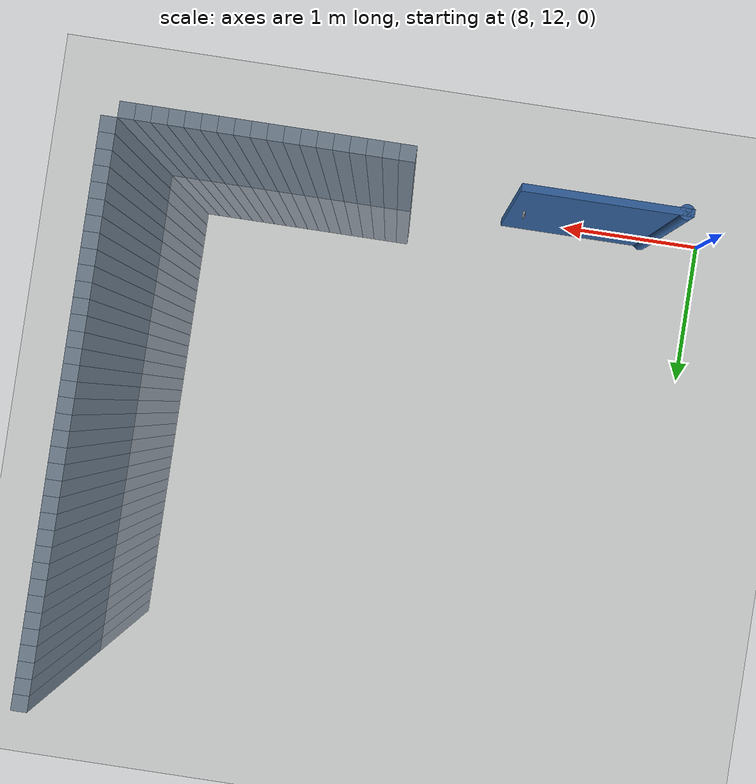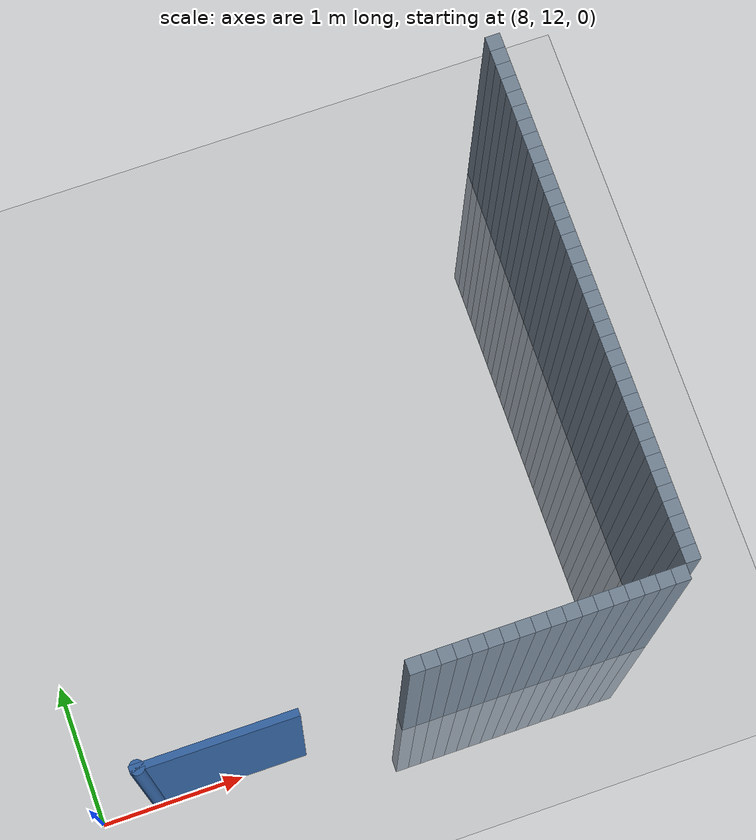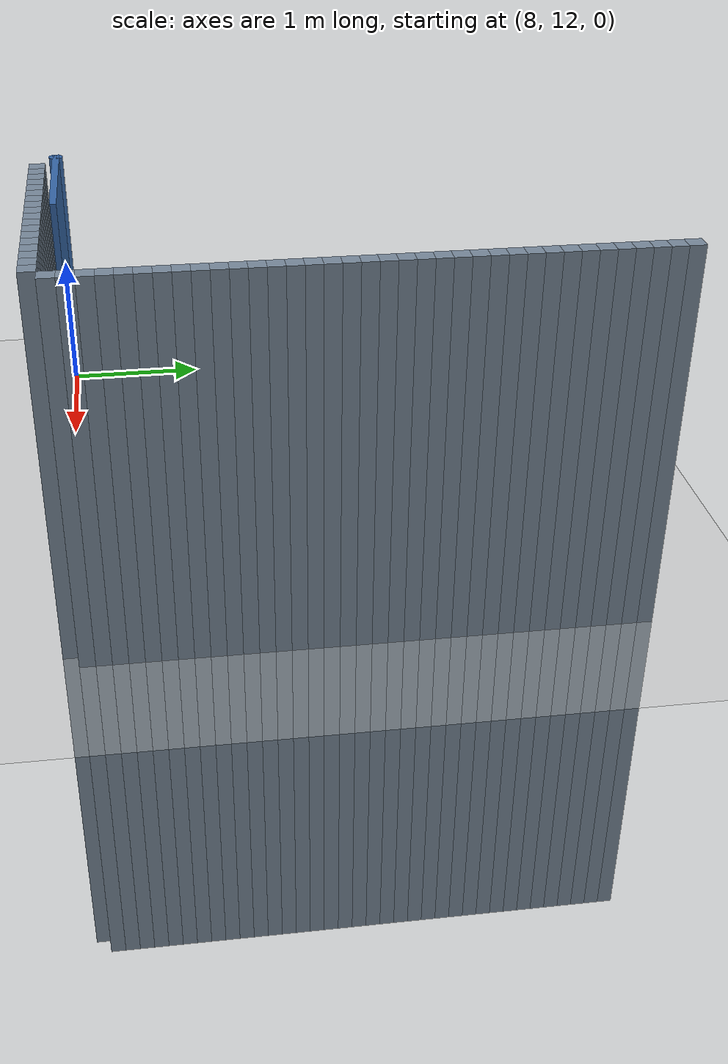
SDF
<sdf version="1.6">
 <world name="default">
  <model name="ground_plane">
   <static>1</static>
   <link name="link">
    <collision name="collision">
     <geometry><plane><normal>0 0 1</normal><size>100 100</size></plane></geometry>
     <surface><friction><ode><mu>100</mu><mu2>50</mu2></ode></friction></surface>
    </collision>
    <visual name="visual">
     <cast_shadows>0</cast_shadows>
     <geometry><plane><normal>0 0 1</normal><size>100 100</size></plane></geometry>
     <material>
      <script><uri>file://media/materials/scripts/gazebo.material</uri><name>Gazebo/Grey</name></script>
     </material>
    </visual>
   </link>
  </model>
  <model name="unit_cylinder_528">
   <static>1</static>
   <pose>10.2 12 0 0 -0 0</pose>
   <link name="link">
    <inertial>
     <mass>1</mass>
     <inertia><ixx>0.145833</ixx><ixy>0</ixy><ixz>0</ixz><iyy>0.145833</iyy><iyz>0</iyz><izz>0.125</izz></inertia>
    </inertial>
    <collision name="collision"><geometry><box><size>0.1 0.1 5</size></box></geometry></collision>
    <visual name="visual">
     <geometry><box><size>0.1 0.1 5</size></box></geometry>
     <material><ambient>0.466667 0.533333 0.6 1</ambient><diffuse>0.466667 0.533333 0.6 1</diffuse></material>
     <material>
      <script><name>Gazebo/Grey</name><uri>file://media/materials/scripts/gazebo.material</uri></script>
     </material>
    </visual>
   </link>
  </model>
  <model name="unit_cylinder_532">
   <static>1</static>
   <pose>10.3 12 0 0 -0 0</pose>
   <link name="link">
    <inertial>
     <mass>1</mass>
     <inertia><ixx>0.145833</ixx><ixy>0</ixy><ixz>0</ixz><iyy>0.145833</iyy><iyz>0</iyz><izz>0.125</izz></inertia>
    </inertial>
    <collision name="collision"><geometry><box><size>0.1 0.1 5</size></box></geometry></collision>
    <visual name="visual">
     <geometry><box><size>0.1 0.1 5</size></box></geometry>
     <material><ambient>0.466667 0.533333 0.6 1</ambient><diffuse>0.466667 0.533333 0.6 1</diffuse></material>
     <material>
      <script><name>Gazebo/Grey</name><uri>file://media/materials/scripts/gazebo.material</uri></script>
     </material>
    </visual>
   </link>
  </model>
  <model name="unit_cylinder_536">
   <static>1</static>
   <pose>10.4 12 0 0 -0 0</pose>
   <link name="link">
    <inertial>
     <mass>1</mass>
     <inertia><ixx>0.145833</ixx><ixy>0</ixy><ixz>0</ixz><iyy>0.145833</iyy><iyz>0</iyz><izz>0.125</izz></inertia>
    </inertial>
    <collision name="collision"><geometry><box><size>0.1 0.1 5</size></box></geometry></collision>
    <visual name="visual">
     <geometry><box><size>0.1 0.1 5</size></box></geometry>
     <material><ambient>0.466667 0.533333 0.6 1</ambient><diffuse>0.466667 0.533333 0.6 1</diffuse></material>
     <material>
      <script><name>Gazebo/Grey</name><uri>file://media/materials/scripts/gazebo.material</uri></script>
     </material>
    </visual>
   </link>
  </model>
  <model name="unit_cylinder_540">
   <static>1</static>
   <pose>10.5 12 0 0 -0 0</pose>
   <link name="link">
    <inertial>
     <mass>1</mass>
     <inertia><ixx>0.145833</ixx><ixy>0</ixy><ixz>0</ixz><iyy>0.145833</iyy><iyz>0</iyz><izz>0.125</izz></inertia>
    </inertial>
    <collision name="collision"><geometry><box><size>0.1 0.1 5</size></box></geometry></collision>
    <visual name="visual">
     <geometry><box><size>0.1 0.1 5</size></box></geometry>
     <material><ambient>0.466667 0.533333 0.6 1</ambient><diffuse>0.466667 0.533333 0.6 1</diffuse></material>
     <material>
      <script><name>Gazebo/Grey</name><uri>file://media/materials/scripts/gazebo.material</uri></script>
     </material>
    </visual>
   </link>
  </model>
  <model name="unit_cylinder_544">
   <static>1</static>
   <pose>10.6 12 0 0 -0 0</pose>
   <link name="link">
    <inertial>
     <mass>1</mass>
     <inertia><ixx>0.145833</ixx><ixy>0</ixy><ixz>0</ixz><iyy>0.145833</iyy><iyz>0</iyz><izz>0.125</izz></inertia>
    </inertial>
    <collision name="collision"><geometry><box><size>0.1 0.1 5</size></box></geometry></collision>
    <visual name="visual">
     <geometry><box><size>0.1 0.1 5</size></box></geometry>
     <material><ambient>0.466667 0.533333 0.6 1</ambient><diffuse>0.466667 0.533333 0.6 1</diffuse></material>
     <material>
      <script><name>Gazebo/Grey</name><uri>file://media/materials/scripts/gazebo.material</uri></script>
     </material>
    </visual>
   </link>
  </model>
  <model name="unit_cylinder_548">
   <static>1</static>
   <pose>10.7 12 0 0 -0 0</pose>
   <link name="link">
    <inertial>
     <mass>1</mass>
     <inertia><ixx>0.145833</ixx><ixy>0</ixy><ixz>0</ixz><iyy>0.145833</iyy><iyz>0</iyz><izz>0.125</izz></inertia>
    </inertial>
    <collision name="collision"><geometry><box><size>0.1 0.1 5</size></box></geometry></collision>
    <visual name="visual">
     <geometry><box><size>0.1 0.1 5</size></box></geometry>
     <material><ambient>0.466667 0.533333 0.6 1</ambient><diffuse>0.466667 0.533333 0.6 1</diffuse></material>
     <material>
      <script><name>Gazebo/Grey</name><uri>file://media/materials/scripts/gazebo.material</uri></script>
     </material>
    </visual>
   </link>
  </model>
  <model name="unit_cylinder_552">
   <static>1</static>
   <pose>10.8 12 0 0 -0 0</pose>
   <link name="link">
    <inertial>
     <mass>1</mass>
     <inertia><ixx>0.145833</ixx><ixy>0</ixy><ixz>0</ixz><iyy>0.145833</iyy><iyz>0</iyz><izz>0.125</izz></inertia>
    </inertial>
    <collision name="collision"><geometry><box><size>0.1 0.1 5</size></box></geometry></collision>
    <visual name="visual">
     <geometry><box><size>0.1 0.1 5</size></box></geometry>
     <material><ambient>0.466667 0.533333 0.6 1</ambient><diffuse>0.466667 0.533333 0.6 1</diffuse></material>
     <material>
      <script><name>Gazebo/Grey</name><uri>file://media/materials/scripts/gazebo.material</uri></script>
     </material>
    </visual>
   </link>
  </model>
  <model name="unit_cylinder_556">
   <static>1</static>
   <pose>10.9 12 0 0 -0 0</pose>
   <link name="link">
    <inertial>
     <mass>1</mass>
     <inertia><ixx>0.145833</ixx><ixy>0</ixy><ixz>0</ixz><iyy>0.145833</iyy><iyz>0</iyz><izz>0.125</izz></inertia>
    </inertial>
    <collision name="collision"><geometry><box><size>0.1 0.1 5</size></box></geometry></collision>
    <visual name="visual">
     <geometry><box><size>0.1 0.1 5</size></box></geometry>
     <material><ambient>0.466667 0.533333 0.6 1</ambient><diffuse>0.466667 0.533333 0.6 1</diffuse></material>
     <material>
      <script><name>Gazebo/Grey</name><uri>file://media/materials/scripts/gazebo.material</uri></script>
     </material>
    </visual>
   </link>
  </model>
  <model name="unit_cylinder_560">
   <static>1</static>
   <pose>11 12 0 0 -0 0</pose>
   <link name="link">
    <inertial>
     <mass>1</mass>
     <inertia><ixx>0.145833</ixx><ixy>0</ixy><ixz>0</ixz><iyy>0.145833</iyy><iyz>0</iyz><izz>0.125</izz></inertia>
    </inertial>
    <collision name="collision"><geometry><box><size>0.1 0.1 5</size></box></geometry></collision>
    <visual name="visual">
     <geometry><box><size>0.1 0.1 5</size></box></geometry>
     <material><ambient>0.466667 0.533333 0.6 1</ambient><diffuse>0.466667 0.533333 0.6 1</diffuse></material>
     <material>
      <script><name>Gazebo/Grey</name><uri>file://media/materials/scripts/gazebo.material</uri></script>
     </material>
    </visual>
   </link>
  </model>
  <model name="unit_cylinder_564">
   <static>1</static>
   <pose>11.1 12 0 0 -0 0</pose>
   <link name="link">
    <inertial>
     <mass>1</mass>
     <inertia><ixx>0.145833</ixx><ixy>0</ixy><ixz>0</ixz><iyy>0.145833</iyy><iyz>0</iyz><izz>0.125</izz></inertia>
    </inertial>
    <collision name="collision"><geometry><box><size>0.1 0.1 5</size></box></geometry></collision>
    <visual name="visual">
     <geometry><box><size>0.1 0.1 5</size></box></geometry>
     <material><ambient>0.466667 0.533333 0.6 1</ambient><diffuse>0.466667 0.533333 0.6 1</diffuse></material>
     <material>
      <script><name>Gazebo/Grey</name><uri>file://media/materials/scripts/gazebo.material</uri></script>
     </material>
    </visual>
   </link>
  </model>
  <model name="unit_cylinder_568">
   <static>1</static>
   <pose>11.2 12 0 0 -0 0</pose>
   <link name="link">
    <inertial>
     <mass>1</mass>
     <inertia><ixx>0.145833</ixx><ixy>0</ixy><ixz>0</ixz><iyy>0.145833</iyy><iyz>0</iyz><izz>0.125</izz></inertia>
    </inertial>
    <collision name="collision"><geometry><box><size>0.1 0.1 5</size></box></geometry></collision>
    <visual name="visual">
     <geometry><box><size>0.1 0.1 5</size></box></geometry>
     <material><ambient>0.466667 0.533333 0.6 1</ambient><diffuse>0.466667 0.533333 0.6 1</diffuse></material>
     <material>
      <script><name>Gazebo/Grey</name><uri>file://media/materials/scripts/gazebo.material</uri></script>
     </material>
    </visual>
   </link>
  </model>
  <model name="unit_cylinder_572">
   <static>1</static>
   <pose>11.3 12 0 0 -0 0</pose>
   <link name="link">
    <inertial>
     <mass>1</mass>
     <inertia><ixx>0.145833</ixx><ixy>0</ixy><ixz>0</ixz><iyy>0.145833</iyy><iyz>0</iyz><izz>0.125</izz></inertia>
    </inertial>
    <collision name="collision"><geometry><box><size>0.1 0.1 5</size></box></geometry></collision>
    <visual name="visual">
     <geometry><box><size>0.1 0.1 5</size></box></geometry>
     <material><ambient>0.466667 0.533333 0.6 1</ambient><diffuse>0.466667 0.533333 0.6 1</diffuse></material>
     <material>
      <script><name>Gazebo/Grey</name><uri>file://media/materials/scripts/gazebo.material</uri></script>
     </material>
    </visual>
   </link>
  </model>
  <model name="unit_cylinder_576">
   <static>1</static>
   <pose>11.4 12 0 0 -0 0</pose>
   <link name="link">
    <inertial>
     <mass>1</mass>
     <inertia><ixx>0.145833</ixx><ixy>0</ixy><ixz>0</ixz><iyy>0.145833</iyy><iyz>0</iyz><izz>0.125</izz></inertia>
    </inertial>
    <collision name="collision"><geometry><box><size>0.1 0.1 5</size></box></geometry></collision>
    <visual name="visual">
     <geometry><box><size>0.1 0.1 5</size></box></geometry>
     <material><ambient>0.466667 0.533333 0.6 1</ambient><diffuse>0.466667 0.533333 0.6 1</diffuse></material>
     <material>
      <script><name>Gazebo/Grey</name><uri>file://media/materials/scripts/gazebo.material</uri></script>
     </material>
    </visual>
   </link>
  </model>
  <model name="unit_cylinder_580">
   <static>1</static>
   <pose>11.5 12 0 0 -0 0</pose>
   <link name="link">
    <inertial>
     <mass>1</mass>
     <inertia><ixx>0.145833</ixx><ixy>0</ixy><ixz>0</ixz><iyy>0.145833</iyy><iyz>0</iyz><izz>0.125</izz></inertia>
    </inertial>
    <collision name="collision"><geometry><box><size>0.1 0.1 5</size></box></geometry></collision>
    <visual name="visual">
     <geometry><box><size>0.1 0.1 5</size></box></geometry>
     <material><ambient>0.466667 0.533333 0.6 1</ambient><diffuse>0.466667 0.533333 0.6 1</diffuse></material>
     <material>
      <script><name>Gazebo/Grey</name><uri>file://media/materials/scripts/gazebo.material</uri></script>
     </material>
    </visual>
   </link>
  </model>
  <model name="unit_cylinder_584">
   <static>1</static>
   <pose>11.6 12 0 0 -0 0</pose>
   <link name="link">
    <inertial>
     <mass>1</mass>
     <inertia><ixx>0.145833</ixx><ixy>0</ixy><ixz>0</ixz><iyy>0.145833</iyy><iyz>0</iyz><izz>0.125</izz></inertia>
    </inertial>
    <collision name="collision"><geometry><box><size>0.1 0.1 5</size></box></geometry></collision>
    <visual name="visual">
     <geometry><box><size>0.1 0.1 5</size></box></geometry>
     <material><ambient>0.466667 0.533333 0.6 1</ambient><diffuse>0.466667 0.533333 0.6 1</diffuse></material>
     <material>
      <script><name>Gazebo/Grey</name><uri>file://media/materials/scripts/gazebo.material</uri></script>
     </material>
    </visual>
   </link>
  </model>
  <model name="unit_cylinder_588">
   <static>1</static>
   <pose>11.7 12 0 0 -0 0</pose>
   <link name="link">
    <inertial>
     <mass>1</mass>
     <inertia><ixx>0.145833</ixx><ixy>0</ixy><ixz>0</ixz><iyy>0.145833</iyy><iyz>0</iyz><izz>0.125</izz></inertia>
    </inertial>
    <collision name="collision"><geometry><box><size>0.1 0.1 5</size></box></geometry></collision>
    <visual name="visual">
     <geometry><box><size>0.1 0.1 5</size></box></geometry>
     <material><ambient>0.466667 0.533333 0.6 1</ambient><diffuse>0.466667 0.533333 0.6 1</diffuse></material>
     <material>
      <script><name>Gazebo/Grey</name><uri>file://media/materials/scripts/gazebo.material</uri></script>
     </material>
    </visual>
   </link>
  </model>
  <model name="unit_cylinder_592">
   <static>1</static>
   <pose>11.8 12 0 0 -0 0</pose>
   <link name="link">
    <inertial>
     <mass>1</mass>
     <inertia><ixx>0.145833</ixx><ixy>0</ixy><ixz>0</ixz><iyy>0.145833</iyy><iyz>0</iyz><izz>0.125</izz></inertia>
    </inertial>
    <collision name="collision"><geometry><box><size>0.1 0.1 5</size></box></geometry></collision>
    <visual name="visual">
     <geometry><box><size>0.1 0.1 5</size></box></geometry>
     <material><ambient>0.466667 0.533333 0.6 1</ambient><diffuse>0.466667 0.533333 0.6 1</diffuse></material>
     <material>
      <script><name>Gazebo/Grey</name><uri>file://media/materials/scripts/gazebo.material</uri></script>
     </material>
    </visual>
   </link>
  </model>
  <model name="unit_cylinder_596">
   <static>1</static>
   <pose>11.9 12 0 0 -0 0</pose>
   <link name="link">
    <inertial>
     <mass>1</mass>
     <inertia><ixx>0.145833</ixx><ixy>0</ixy><ixz>0</ixz><iyy>0.145833</iyy><iyz>0</iyz><izz>0.125</izz></inertia>
    </inertial>
    <collision name="collision"><geometry><box><size>0.1 0.1 5</size></box></geometry></collision>
    <visual name="visual">
     <geometry><box><size>0.1 0.1 5</size></box></geometry>
     <material><ambient>0.466667 0.533333 0.6 1</ambient><diffuse>0.466667 0.533333 0.6 1</diffuse></material>
     <material>
      <script><name>Gazebo/Grey</name><uri>file://media/materials/scripts/gazebo.material</uri></script>
     </material>
    </visual>
   </link>
  </model>
  <model name="unit_cylinder_719">
   <static>1</static>
   <pose>12 12.1 0 0 -0 0</pose>
   <link name="link">
    <inertial>
     <mass>1</mass>
     <inertia><ixx>0.145833</ixx><ixy>0</ixy><ixz>0</ixz><iyy>0.145833</iyy><iyz>0</iyz><izz>0.125</izz></inertia>
    </inertial>
    <collision name="collision"><geometry><box><size>0.1 0.1 5</size></box></geometry></collision>
    <visual name="visual">
     <geometry><box><size>0.1 0.1 5</size></box></geometry>
     <material><ambient>0.466667 0.533333 0.6 1</ambient><diffuse>0.466667 0.533333 0.6 1</diffuse></material>
     <material>
      <script><name>Gazebo/Grey</name><uri>file://media/materials/scripts/gazebo.material</uri></script>
     </material>
    </visual>
   </link>
  </model>
  <model name="unit_cylinder_720">
   <static>1</static>
   <pose>12 12.2 0 0 -0 0</pose>
   <link name="link">
    <inertial>
     <mass>1</mass>
     <inertia><ixx>0.145833</ixx><ixy>0</ixy><ixz>0</ixz><iyy>0.145833</iyy><iyz>0</iyz><izz>0.125</izz></inertia>
    </inertial>
    <collision name="collision"><geometry><box><size>0.1 0.1 5</size></box></geometry></collision>
    <visual name="visual">
     <geometry><box><size>0.1 0.1 5</size></box></geometry>
     <material><ambient>0.466667 0.533333 0.6 1</ambient><diffuse>0.466667 0.533333 0.6 1</diffuse></material>
     <material>
      <script><name>Gazebo/Grey</name><uri>file://media/materials/scripts/gazebo.material</uri></script>
     </material>
    </visual>
   </link>
  </model>
  <model name="unit_cylinder_721">
   <static>1</static>
   <pose>12 12.3 0 0 -0 0</pose>
   <link name="link">
    <inertial>
     <mass>1</mass>
     <inertia><ixx>0.145833</ixx><ixy>0</ixy><ixz>0</ixz><iyy>0.145833</iyy><iyz>0</iyz><izz>0.125</izz></inertia>
    </inertial>
    <collision name="collision"><geometry><box><size>0.1 0.1 5</size></box></geometry></collision>
    <visual name="visual">
     <geometry><box><size>0.1 0.1 5</size></box></geometry>
     <material><ambient>0.466667 0.533333 0.6 1</ambient><diffuse>0.466667 0.533333 0.6 1</diffuse></material>
     <material>
      <script><name>Gazebo/Grey</name><uri>file://media/materials/scripts/gazebo.material</uri></script>
     </material>
    </visual>
   </link>
  </model>
  <model name="unit_cylinder_722">
   <static>1</static>
   <pose>12 12.4 0 0 -0 0</pose>
   <link name="link">
    <inertial>
     <mass>1</mass>
     <inertia><ixx>0.145833</ixx><ixy>0</ixy><ixz>0</ixz><iyy>0.145833</iyy><iyz>0</iyz><izz>0.125</izz></inertia>
    </inertial>
    <collision name="collision"><geometry><box><size>0.1 0.1 5</size></box></geometry></collision>
    <visual name="visual">
     <geometry><box><size>0.1 0.1 5</size></box></geometry>
     <material><ambient>0.466667 0.533333 0.6 1</ambient><diffuse>0.466667 0.533333 0.6 1</diffuse></material>
     <material>
      <script><name>Gazebo/Grey</name><uri>file://media/materials/scripts/gazebo.material</uri></script>
     </material>
    </visual>
   </link>
  </model>
  <model name="unit_cylinder_723">
   <static>1</static>
   <pose>12 12.5 0 0 -0 0</pose>
   <link name="link">
    <inertial>
     <mass>1</mass>
     <inertia><ixx>0.145833</ixx><ixy>0</ixy><ixz>0</ixz><iyy>0.145833</iyy><iyz>0</iyz><izz>0.125</izz></inertia>
    </inertial>
    <collision name="collision"><geometry><box><size>0.1 0.1 5</size></box></geometry></collision>
    <visual name="visual">
     <geometry><box><size>0.1 0.1 5</size></box></geometry>
     <material><ambient>0.466667 0.533333 0.6 1</ambient><diffuse>0.466667 0.533333 0.6 1</diffuse></material>
     <material>
      <script><name>Gazebo/Grey</name><uri>file://media/materials/scripts/gazebo.material</uri></script>
     </material>
    </visual>
   </link>
  </model>
  <model name="unit_cylinder_724">
   <static>1</static>
   <pose>12 12.6 0 0 -0 0</pose>
   <link name="link">
    <inertial>
     <mass>1</mass>
     <inertia><ixx>0.145833</ixx><ixy>0</ixy><ixz>0</ixz><iyy>0.145833</iyy><iyz>0</iyz><izz>0.125</izz></inertia>
    </inertial>
    <collision name="collision"><geometry><box><size>0.1 0.1 5</size></box></geometry></collision>
    <visual name="visual">
     <geometry><box><size>0.1 0.1 5</size></box></geometry>
     <material><ambient>0.466667 0.533333 0.6 1</ambient><diffuse>0.466667 0.533333 0.6 1</diffuse></material>
     <material>
      <script><name>Gazebo/Grey</name><uri>file://media/materials/scripts/gazebo.material</uri></script>
     </material>
    </visual>
   </link>
  </model>
  <model name="unit_cylinder_725">
   <static>1</static>
   <pose>12 12.7 0 0 -0 0</pose>
   <link name="link">
    <inertial>
     <mass>1</mass>
     <inertia><ixx>0.145833</ixx><ixy>0</ixy><ixz>0</ixz><iyy>0.145833</iyy><iyz>0</iyz><izz>0.125</izz></inertia>
    </inertial>
    <collision name="collision"><geometry><box><size>0.1 0.1 5</size></box></geometry></collision>
    <visual name="visual">
     <geometry><box><size>0.1 0.1 5</size></box></geometry>
     <material><ambient>0.466667 0.533333 0.6 1</ambient><diffuse>0.466667 0.533333 0.6 1</diffuse></material>
     <material>
      <script><name>Gazebo/Grey</name><uri>file://media/materials/scripts/gazebo.material</uri></script>
     </material>
    </visual>
   </link>
  </model>
  <model name="unit_cylinder_726">
   <static>1</static>
   <pose>12 12.8 0 0 -0 0</pose>
   <link name="link">
    <inertial>
     <mass>1</mass>
     <inertia><ixx>0.145833</ixx><ixy>0</ixy><ixz>0</ixz><iyy>0.145833</iyy><iyz>0</iyz><izz>0.125</izz></inertia>
    </inertial>
    <collision name="collision"><geometry><box><size>0.1 0.1 5</size></box></geometry></collision>
    <visual name="visual">
     <geometry><box><size>0.1 0.1 5</size></box></geometry>
     <material><ambient>0.466667 0.533333 0.6 1</ambient><diffuse>0.466667 0.533333 0.6 1</diffuse></material>
     <material>
      <script><name>Gazebo/Grey</name><uri>file://media/materials/scripts/gazebo.material</uri></script>
     </material>
    </visual>
   </link>
  </model>
  <model name="unit_cylinder_727">
   <static>1</static>
   <pose>12 12.9 0 0 -0 0</pose>
   <link name="link">
    <inertial>
     <mass>1</mass>
     <inertia><ixx>0.145833</ixx><ixy>0</ixy><ixz>0</ixz><iyy>0.145833</iyy><iyz>0</iyz><izz>0.125</izz></inertia>
    </inertial>
    <collision name="collision"><geometry><box><size>0.1 0.1 5</size></box></geometry></collision>
    <visual name="visual">
     <geometry><box><size>0.1 0.1 5</size></box></geometry>
     <material><ambient>0.466667 0.533333 0.6 1</ambient><diffuse>0.466667 0.533333 0.6 1</diffuse></material>
     <material>
      <script><name>Gazebo/Grey</name><uri>file://media/materials/scripts/gazebo.material</uri></script>
     </material>
    </visual>
   </link>
  </model>
  <model name="unit_cylinder_728">
   <static>1</static>
   <pose>12 13 0 0 -0 0</pose>
   <link name="link">
    <inertial>
     <mass>1</mass>
     <inertia><ixx>0.145833</ixx><ixy>0</ixy><ixz>0</ixz><iyy>0.145833</iyy><iyz>0</iyz><izz>0.125</izz></inertia>
    </inertial>
    <collision name="collision"><geometry><box><size>0.1 0.1 5</size></box></geometry></collision>
    <visual name="visual">
     <geometry><box><size>0.1 0.1 5</size></box></geometry>
     <material><ambient>0.466667 0.533333 0.6 1</ambient><diffuse>0.466667 0.533333 0.6 1</diffuse></material>
     <material>
      <script><name>Gazebo/Grey</name><uri>file://media/materials/scripts/gazebo.material</uri></script>
     </material>
    </visual>
   </link>
  </model>
  <model name="unit_cylinder_729">
   <static>1</static>
   <pose>12 13.1 0 0 -0 0</pose>
   <link name="link">
    <inertial>
     <mass>1</mass>
     <inertia><ixx>0.145833</ixx><ixy>0</ixy><ixz>0</ixz><iyy>0.145833</iyy><iyz>0</iyz><izz>0.125</izz></inertia>
    </inertial>
    <collision name="collision"><geometry><box><size>0.1 0.1 5</size></box></geometry></collision>
    <visual name="visual">
     <geometry><box><size>0.1 0.1 5</size></box></geometry>
     <material><ambient>0.466667 0.533333 0.6 1</ambient><diffuse>0.466667 0.533333 0.6 1</diffuse></material>
     <material>
      <script><name>Gazebo/Grey</name><uri>file://media/materials/scripts/gazebo.material</uri></script>
     </material>
    </visual>
   </link>
  </model>
  <model name="unit_cylinder_730">
   <static>1</static>
   <pose>12 13.2 0 0 -0 0</pose>
   <link name="link">
    <inertial>
     <mass>1</mass>
     <inertia><ixx>0.145833</ixx><ixy>0</ixy><ixz>0</ixz><iyy>0.145833</iyy><iyz>0</iyz><izz>0.125</izz></inertia>
    </inertial>
    <collision name="collision"><geometry><box><size>0.1 0.1 5</size></box></geometry></collision>
    <visual name="visual">
     <geometry><box><size>0.1 0.1 5</size></box></geometry>
     <material><ambient>0.466667 0.533333 0.6 1</ambient><diffuse>0.466667 0.533333 0.6 1</diffuse></material>
     <material>
      <script><name>Gazebo/Grey</name><uri>file://media/materials/scripts/gazebo.material</uri></script>
     </material>
    </visual>
   </link>
  </model>
  <model name="unit_cylinder_731">
   <static>1</static>
   <pose>12 13.3 0 0 -0 0</pose>
   <link name="link">
    <inertial>
     <mass>1</mass>
     <inertia><ixx>0.145833</ixx><ixy>0</ixy><ixz>0</ixz><iyy>0.145833</iyy><iyz>0</iyz><izz>0.125</izz></inertia>
    </inertial>
    <collision name="collision"><geometry><box><size>0.1 0.1 5</size></box></geometry></collision>
    <visual name="visual">
     <geometry><box><size>0.1 0.1 5</size></box></geometry>
     <material><ambient>0.466667 0.533333 0.6 1</ambient><diffuse>0.466667 0.533333 0.6 1</diffuse></material>
     <material>
      <script><name>Gazebo/Grey</name><uri>file://media/materials/scripts/gazebo.material</uri></script>
     </material>
    </visual>
   </link>
  </model>
  <model name="unit_cylinder_732">
   <static>1</static>
   <pose>12 13.4 0 0 -0 0</pose>
   <link name="link">
    <inertial>
     <mass>1</mass>
     <inertia><ixx>0.145833</ixx><ixy>0</ixy><ixz>0</ixz><iyy>0.145833</iyy><iyz>0</iyz><izz>0.125</izz></inertia>
    </inertial>
    <collision name="collision"><geometry><box><size>0.1 0.1 5</size></box></geometry></collision>
    <visual name="visual">
     <geometry><box><size>0.1 0.1 5</size></box></geometry>
     <material><ambient>0.466667 0.533333 0.6 1</ambient><diffuse>0.466667 0.533333 0.6 1</diffuse></material>
     <material>
      <script><name>Gazebo/Grey</name><uri>file://media/materials/scripts/gazebo.material</uri></script>
     </material>
    </visual>
   </link>
  </model>
  <model name="unit_cylinder_733">
   <static>1</static>
   <pose>12 13.5 0 0 -0 0</pose>
   <link name="link">
    <inertial>
     <mass>1</mass>
     <inertia><ixx>0.145833</ixx><ixy>0</ixy><ixz>0</ixz><iyy>0.145833</iyy><iyz>0</iyz><izz>0.125</izz></inertia>
    </inertial>
    <collision name="collision"><geometry><box><size>0.1 0.1 5</size></box></geometry></collision>
    <visual name="visual">
     <geometry><box><size>0.1 0.1 5</size></box></geometry>
     <material><ambient>0.466667 0.533333 0.6 1</ambient><diffuse>0.466667 0.533333 0.6 1</diffuse></material>
     <material>
      <script><name>Gazebo/Grey</name><uri>file://media/materials/scripts/gazebo.material</uri></script>
     </material>
    </visual>
   </link>
  </model>
  <model name="unit_cylinder_734">
   <static>1</static>
   <pose>12 13.6 0 0 -0 0</pose>
   <link name="link">
    <inertial>
     <mass>1</mass>
     <inertia><ixx>0.145833</ixx><ixy>0</ixy><ixz>0</ixz><iyy>0.145833</iyy><iyz>0</iyz><izz>0.125</izz></inertia>
    </inertial>
    <collision name="collision"><geometry><box><size>0.1 0.1 5</size></box></geometry></collision>
    <visual name="visual">
     <geometry><box><size>0.1 0.1 5</size></box></geometry>
     <material><ambient>0.466667 0.533333 0.6 1</ambient><diffuse>0.466667 0.533333 0.6 1</diffuse></material>
     <material>
      <script><name>Gazebo/Grey</name><uri>file://media/materials/scripts/gazebo.material</uri></script>
     </material>
    </visual>
   </link>
  </model>
  <model name="unit_cylinder_735">
   <static>1</static>
   <pose>12 13.7 0 0 -0 0</pose>
   <link name="link">
    <inertial>
     <mass>1</mass>
     <inertia><ixx>0.145833</ixx><ixy>0</ixy><ixz>0</ixz><iyy>0.145833</iyy><iyz>0</iyz><izz>0.125</izz></inertia>
    </inertial>
    <collision name="collision"><geometry><box><size>0.1 0.1 5</size></box></geometry></collision>
    <visual name="visual">
     <geometry><box><size>0.1 0.1 5</size></box></geometry>
     <material><ambient>0.466667 0.533333 0.6 1</ambient><diffuse>0.466667 0.533333 0.6 1</diffuse></material>
     <material>
      <script><name>Gazebo/Grey</name><uri>file://media/materials/scripts/gazebo.material</uri></script>
     </material>
    </visual>
   </link>
  </model>
  <model name="unit_cylinder_736">
   <static>1</static>
   <pose>12 13.8 0 0 -0 0</pose>
   <link name="link">
    <inertial>
     <mass>1</mass>
     <inertia><ixx>0.145833</ixx><ixy>0</ixy><ixz>0</ixz><iyy>0.145833</iyy><iyz>0</iyz><izz>0.125</izz></inertia>
    </inertial>
    <collision name="collision"><geometry><box><size>0.1 0.1 5</size></box></geometry></collision>
    <visual name="visual">
     <geometry><box><size>0.1 0.1 5</size></box></geometry>
     <material><ambient>0.466667 0.533333 0.6 1</ambient><diffuse>0.466667 0.533333 0.6 1</diffuse></material>
     <material>
      <script><name>Gazebo/Grey</name><uri>file://media/materials/scripts/gazebo.material</uri></script>
     </material>
    </visual>
   </link>
  </model>
  <model name="unit_cylinder_737">
   <static>1</static>
   <pose>12 13.9 0 0 -0 0</pose>
   <link name="link">
    <inertial>
     <mass>1</mass>
     <inertia><ixx>0.145833</ixx><ixy>0</ixy><ixz>0</ixz><iyy>0.145833</iyy><iyz>0</iyz><izz>0.125</izz></inertia>
    </inertial>
    <collision name="collision"><geometry><box><size>0.1 0.1 5</size></box></geometry></collision>
    <visual name="visual">
     <geometry><box><size>0.1 0.1 5</size></box></geometry>
     <material><ambient>0.466667 0.533333 0.6 1</ambient><diffuse>0.466667 0.533333 0.6 1</diffuse></material>
     <material>
      <script><name>Gazebo/Grey</name><uri>file://media/materials/scripts/gazebo.material</uri></script>
     </material>
    </visual>
   </link>
  </model>
  <model name="unit_cylinder_738">
   <static>1</static>
   <pose>12 14 0 0 -0 0</pose>
   <link name="link">
    <inertial>
     <mass>1</mass>
     <inertia><ixx>0.145833</ixx><ixy>0</ixy><ixz>0</ixz><iyy>0.145833</iyy><iyz>0</iyz><izz>0.125</izz></inertia>
    </inertial>
    <collision name="collision"><geometry><box><size>0.1 0.1 5</size></box></geometry></collision>
    <visual name="visual">
     <geometry><box><size>0.1 0.1 5</size></box></geometry>
     <material><ambient>0.466667 0.533333 0.6 1</ambient><diffuse>0.466667 0.533333 0.6 1</diffuse></material>
     <material>
      <script><name>Gazebo/Grey</name><uri>file://media/materials/scripts/gazebo.material</uri></script>
     </material>
    </visual>
   </link>
  </model>
  <model name="unit_cylinder_739">
   <static>1</static>
   <pose>12 14.1 0 0 -0 0</pose>
   <link name="link">
    <inertial>
     <mass>1</mass>
     <inertia><ixx>0.145833</ixx><ixy>0</ixy><ixz>0</ixz><iyy>0.145833</iyy><iyz>0</iyz><izz>0.125</izz></inertia>
    </inertial>
    <collision name="collision"><geometry><box><size>0.1 0.1 5</size></box></geometry></collision>
    <visual name="visual">
     <geometry><box><size>0.1 0.1 5</size></box></geometry>
     <material><ambient>0.466667 0.533333 0.6 1</ambient><diffuse>0.466667 0.533333 0.6 1</diffuse></material>
     <material>
      <script><name>Gazebo/Grey</name><uri>file://media/materials/scripts/gazebo.material</uri></script>
     </material>
    </visual>
   </link>
  </model>
  <model name="unit_cylinder_740">
   <static>1</static>
   <pose>12 14.2 0 0 -0 0</pose>
   <link name="link">
    <inertial>
     <mass>1</mass>
     <inertia><ixx>0.145833</ixx><ixy>0</ixy><ixz>0</ixz><iyy>0.145833</iyy><iyz>0</iyz><izz>0.125</izz></inertia>
    </inertial>
    <collision name="collision"><geometry><box><size>0.1 0.1 5</size></box></geometry></collision>
    <visual name="visual">
     <geometry><box><size>0.1 0.1 5</size></box></geometry>
     <material><ambient>0.466667 0.533333 0.6 1</ambient><diffuse>0.466667 0.533333 0.6 1</diffuse></material>
     <material>
      <script><name>Gazebo/Grey</name><uri>file://media/materials/scripts/gazebo.material</uri></script>
     </material>
    </visual>
   </link>
  </model>
  <model name="unit_cylinder_741">
   <static>1</static>
   <pose>12 14.3 0 0 -0 0</pose>
   <link name="link">
    <inertial>
     <mass>1</mass>
     <inertia><ixx>0.145833</ixx><ixy>0</ixy><ixz>0</ixz><iyy>0.145833</iyy><iyz>0</iyz><izz>0.125</izz></inertia>
    </inertial>
    <collision name="collision"><geometry><box><size>0.1 0.1 5</size></box></geometry></collision>
    <visual name="visual">
     <geometry><box><size>0.1 0.1 5</size></box></geometry>
     <material><ambient>0.466667 0.533333 0.6 1</ambient><diffuse>0.466667 0.533333 0.6 1</diffuse></material>
     <material>
      <script><name>Gazebo/Grey</name><uri>file://media/materials/scripts/gazebo.material</uri></script>
     </material>
    </visual>
   </link>
  </model>
  <model name="unit_cylinder_742">
   <static>1</static>
   <pose>12 14.4 0 0 -0 0</pose>
   <link name="link">
    <inertial>
     <mass>1</mass>
     <inertia><ixx>0.145833</ixx><ixy>0</ixy><ixz>0</ixz><iyy>0.145833</iyy><iyz>0</iyz><izz>0.125</izz></inertia>
    </inertial>
    <collision name="collision"><geometry><box><size>0.1 0.1 5</size></box></geometry></collision>
    <visual name="visual">
     <geometry><box><size>0.1 0.1 5</size></box></geometry>
     <material><ambient>0.466667 0.533333 0.6 1</ambient><diffuse>0.466667 0.533333 0.6 1</diffuse></material>
     <material>
      <script><name>Gazebo/Grey</name><uri>file://media/materials/scripts/gazebo.material</uri></script>
     </material>
    </visual>
   </link>
  </model>
  <model name="unit_cylinder_743">
   <static>1</static>
   <pose>12 14.5 0 0 -0 0</pose>
   <link name="link">
    <inertial>
     <mass>1</mass>
     <inertia><ixx>0.145833</ixx><ixy>0</ixy><ixz>0</ixz><iyy>0.145833</iyy><iyz>0</iyz><izz>0.125</izz></inertia>
    </inertial>
    <collision name="collision"><geometry><box><size>0.1 0.1 5</size></box></geometry></collision>
    <visual name="visual">
     <geometry><box><size>0.1 0.1 5</size></box></geometry>
     <material><ambient>0.466667 0.533333 0.6 1</ambient><diffuse>0.466667 0.533333 0.6 1</diffuse></material>
     <material>
      <script><name>Gazebo/Grey</name><uri>file://media/materials/scripts/gazebo.material</uri></script>
     </material>
    </visual>
   </link>
  </model>
  <model name="unit_cylinder_744">
   <static>1</static>
   <pose>12 14.6 0 0 -0 0</pose>
   <link name="link">
    <inertial>
     <mass>1</mass>
     <inertia><ixx>0.145833</ixx><ixy>0</ixy><ixz>0</ixz><iyy>0.145833</iyy><iyz>0</iyz><izz>0.125</izz></inertia>
    </inertial>
    <collision name="collision"><geometry><box><size>0.1 0.1 5</size></box></geometry></collision>
    <visual name="visual">
     <geometry><box><size>0.1 0.1 5</size></box></geometry>
     <material><ambient>0.466667 0.533333 0.6 1</ambient><diffuse>0.466667 0.533333 0.6 1</diffuse></material>
     <material>
      <script><name>Gazebo/Grey</name><uri>file://media/materials/scripts/gazebo.material</uri></script>
     </material>
    </visual>
   </link>
  </model>
  <model name="unit_cylinder_745">
   <static>1</static>
   <pose>12 14.7 0 0 -0 0</pose>
   <link name="link">
    <inertial>
     <mass>1</mass>
     <inertia><ixx>0.145833</ixx><ixy>0</ixy><ixz>0</ixz><iyy>0.145833</iyy><iyz>0</iyz><izz>0.125</izz></inertia>
    </inertial>
    <collision name="collision"><geometry><box><size>0.1 0.1 5</size></box></geometry></collision>
    <visual name="visual">
     <geometry><box><size>0.1 0.1 5</size></box></geometry>
     <material><ambient>0.466667 0.533333 0.6 1</ambient><diffuse>0.466667 0.533333 0.6 1</diffuse></material>
     <material>
      <script><name>Gazebo/Grey</name><uri>file://media/materials/scripts/gazebo.material</uri></script>
     </material>
    </visual>
   </link>
  </model>
  <model name="unit_cylinder_746">
   <static>1</static>
   <pose>12 14.8 0 0 -0 0</pose>
   <link name="link">
    <inertial>
     <mass>1</mass>
     <inertia><ixx>0.145833</ixx><ixy>0</ixy><ixz>0</ixz><iyy>0.145833</iyy><iyz>0</iyz><izz>0.125</izz></inertia>
    </inertial>
    <collision name="collision"><geometry><box><size>0.1 0.1 5</size></box></geometry></collision>
    <visual name="visual">
     <geometry><box><size>0.1 0.1 5</size></box></geometry>
     <material><ambient>0.466667 0.533333 0.6 1</ambient><diffuse>0.466667 0.533333 0.6 1</diffuse></material>
     <material>
      <script><name>Gazebo/Grey</name><uri>file://media/materials/scripts/gazebo.material</uri></script>
     </material>
    </visual>
   </link>
  </model>
  <model name="unit_cylinder_747">
   <static>1</static>
   <pose>12 14.9 0 0 -0 0</pose>
   <link name="link">
    <inertial>
     <mass>1</mass>
     <inertia><ixx>0.145833</ixx><ixy>0</ixy><ixz>0</ixz><iyy>0.145833</iyy><iyz>0</iyz><izz>0.125</izz></inertia>
    </inertial>
    <collision name="collision"><geometry><box><size>0.1 0.1 5</size></box></geometry></collision>
    <visual name="visual">
     <geometry><box><size>0.1 0.1 5</size></box></geometry>
     <material><ambient>0.466667 0.533333 0.6 1</ambient><diffuse>0.466667 0.533333 0.6 1</diffuse></material>
     <material>
      <script><name>Gazebo/Grey</name><uri>file://media/materials/scripts/gazebo.material</uri></script>
     </material>
    </visual>
   </link>
  </model>
  <model name="unit_cylinder_748">
   <static>1</static>
   <pose>12 15 0 0 -0 0</pose>
   <link name="link">
    <inertial>
     <mass>1</mass>
     <inertia><ixx>0.145833</ixx><ixy>0</ixy><ixz>0</ixz><iyy>0.145833</iyy><iyz>0</iyz><izz>0.125</izz></inertia>
    </inertial>
    <collision name="collision"><geometry><box><size>0.1 0.1 5</size></box></geometry></collision>
    <visual name="visual">
     <geometry><box><size>0.1 0.1 5</size></box></geometry>
     <material><ambient>0.466667 0.533333 0.6 1</ambient><diffuse>0.466667 0.533333 0.6 1</diffuse></material>
     <material>
      <script><name>Gazebo/Grey</name><uri>file://media/materials/scripts/gazebo.material</uri></script>
     </material>
    </visual>
   </link>
  </model>
  <model name="unit_cylinder_749">
   <static>1</static>
   <pose>12 15.1 0 0 -0 0</pose>
   <link name="link">
    <inertial>
     <mass>1</mass>
     <inertia><ixx>0.145833</ixx><ixy>0</ixy><ixz>0</ixz><iyy>0.145833</iyy><iyz>0</iyz><izz>0.125</izz></inertia>
    </inertial>
    <collision name="collision"><geometry><box><size>0.1 0.1 5</size></box></geometry></collision>
    <visual name="visual">
     <geometry><box><size>0.1 0.1 5</size></box></geometry>
     <material><ambient>0.466667 0.533333 0.6 1</ambient><diffuse>0.466667 0.533333 0.6 1</diffuse></material>
     <material>
      <script><name>Gazebo/Grey</name><uri>file://media/materials/scripts/gazebo.material</uri></script>
     </material>
    </visual>
   </link>
  </model>
  <model name="unit_cylinder_750">
   <static>1</static>
   <pose>12 15.2 0 0 -0 0</pose>
   <link name="link">
    <inertial>
     <mass>1</mass>
     <inertia><ixx>0.145833</ixx><ixy>0</ixy><ixz>0</ixz><iyy>0.145833</iyy><iyz>0</iyz><izz>0.125</izz></inertia>
    </inertial>
    <collision name="collision"><geometry><box><size>0.1 0.1 5</size></box></geometry></collision>
    <visual name="visual">
     <geometry><box><size>0.1 0.1 5</size></box></geometry>
     <material><ambient>0.466667 0.533333 0.6 1</ambient><diffuse>0.466667 0.533333 0.6 1</diffuse></material>
     <material>
      <script><name>Gazebo/Grey</name><uri>file://media/materials/scripts/gazebo.material</uri></script>
     </material>
    </visual>
   </link>
  </model>
  <model name="unit_cylinder_751">
   <static>1</static>
   <pose>12 15.3 0 0 -0 0</pose>
   <link name="link">
    <inertial>
     <mass>1</mass>
     <inertia><ixx>0.145833</ixx><ixy>0</ixy><ixz>0</ixz><iyy>0.145833</iyy><iyz>0</iyz><izz>0.125</izz></inertia>
    </inertial>
    <collision name="collision"><geometry><box><size>0.1 0.1 5</size></box></geometry></collision>
    <visual name="visual">
     <geometry><box><size>0.1 0.1 5</size></box></geometry>
     <material><ambient>0.466667 0.533333 0.6 1</ambient><diffuse>0.466667 0.533333 0.6 1</diffuse></material>
     <material>
      <script><name>Gazebo/Grey</name><uri>file://media/materials/scripts/gazebo.material</uri></script>
     </material>
    </visual>
   </link>
  </model>
  <model name="unit_cylinder_752">
   <static>1</static>
   <pose>12 15.4 0 0 -0 0</pose>
   <link name="link">
    <inertial>
     <mass>1</mass>
     <inertia><ixx>0.145833</ixx><ixy>0</ixy><ixz>0</ixz><iyy>0.145833</iyy><iyz>0</iyz><izz>0.125</izz></inertia>
    </inertial>
    <collision name="collision"><geometry><box><size>0.1 0.1 5</size></box></geometry></collision>
    <visual name="visual">
     <geometry><box><size>0.1 0.1 5</size></box></geometry>
     <material><ambient>0.466667 0.533333 0.6 1</ambient><diffuse>0.466667 0.533333 0.6 1</diffuse></material>
     <material>
      <script><name>Gazebo/Grey</name><uri>file://media/materials/scripts/gazebo.material</uri></script>
     </material>
    </visual>
   </link>
  </model>
  <model name="unit_cylinder_753">
   <static>1</static>
   <pose>12 15.5 0 0 -0 0</pose>
   <link name="link">
    <inertial>
     <mass>1</mass>
     <inertia><ixx>0.145833</ixx><ixy>0</ixy><ixz>0</ixz><iyy>0.145833</iyy><iyz>0</iyz><izz>0.125</izz></inertia>
    </inertial>
    <collision name="collision"><geometry><box><size>0.1 0.1 5</size></box></geometry></collision>
    <visual name="visual">
     <geometry><box><size>0.1 0.1 5</size></box></geometry>
     <material><ambient>0.466667 0.533333 0.6 1</ambient><diffuse>0.466667 0.533333 0.6 1</diffuse></material>
     <material>
      <script><name>Gazebo/Grey</name><uri>file://media/materials/scripts/gazebo.material</uri></script>
     </material>
    </visual>
   </link>
  </model>
  <model name="unit_cylinder_754">
   <static>1</static>
   <pose>12 15.6 0 0 -0 0</pose>
   <link name="link">
    <inertial>
     <mass>1</mass>
     <inertia><ixx>0.145833</ixx><ixy>0</ixy><ixz>0</ixz><iyy>0.145833</iyy><iyz>0</iyz><izz>0.125</izz></inertia>
    </inertial>
    <collision name="collision"><geometry><box><size>0.1 0.1 5</size></box></geometry></collision>
    <visual name="visual">
     <geometry><box><size>0.1 0.1 5</size></box></geometry>
     <material><ambient>0.466667 0.533333 0.6 1</ambient><diffuse>0.466667 0.533333 0.6 1</diffuse></material>
     <material>
      <script><name>Gazebo/Grey</name><uri>file://media/materials/scripts/gazebo.material</uri></script>
     </material>
    </visual>
   </link>
  </model>
  <model name="hinge_door">
   <link name="link_0">
    <inertial>
     <mass>0.11</mass>
     <inertia>
      <ixx>0.0366896</ixx>
      <ixy>0</ixy>
      <ixz>0</ixz>
      <iyy>0.0477583</iyy>
      <iyz>0</iyz>
      <izz>0.0111146</izz>
     </inertia>
    </inertial>
    <pose>0.25 0 1 0 -0 0</pose>
    <visual name="visual">
     <geometry><box><size>1.1 0.05 2</size></box></geometry>
     <material>
      <lighting>1</lighting>
      <script><uri>file://media/materials/scripts/gazebo.material</uri><name>Gazebo/Grey</name></script>
      <shader type="pixel"><normal_map>__default__</normal_map></shader>
      <ambient>0.204 0.396 0.643 1</ambient>
      <diffuse>0.7 0.7 0.7 1</diffuse>
      <specular>0.01 0.01 0.01 1</specular>
      <emissive>0 0 0 1</emissive>
     </material>
    </visual>
    <collision name="collision">
     <geometry><box><size>1.1 0.05 2</size></box></geometry>
     <surface>
      <friction>
       <ode><mu>1</mu><mu2>1</mu2><fdir1>0 0 0</fdir1><slip1>0</slip1><slip2>0</slip2></ode>
       <torsional>
        <coefficient>1</coefficient>
        <patch_radius>0</patch_radius>
        <surface_radius>0</surface_radius>
        <use_patch_radius>1</use_patch_radius>
        <ode><slip>0</slip></ode>
       </torsional>
      </friction>
      <bounce><restitution_coefficient>0</restitution_coefficient><threshold>1e+06</threshold></bounce>
      <contact>
       <collide_without_contact>0</collide_without_contact>
       <collide_without_contact_bitmask>1</collide_without_contact_bitmask>
       <collide_bitmask>1</collide_bitmask>
       <ode>
        <soft_cfm>0</soft_cfm>
        <soft_erp>0.2</soft_erp>
        <kp>1e+13</kp>
        <kd>1</kd>
        <max_vel>0.01</max_vel>
        <min_depth>0</min_depth>
       </ode>
       <bullet>
        <split_impulse>1</split_impulse>
        <split_impulse_penetration_threshold>-0.01</split_impulse_penetration_threshold>
        <soft_cfm>0</soft_cfm>
        <soft_erp>0.2</soft_erp>
        <kp>1e+13</kp>
        <kd>1</kd>
       </bullet>
      </contact>
     </surface>
    </collision>
   </link>
   <link name="link_1">
    <inertial>
     <mass>10.9956</mass>
     <inertia>
      <ixx>3.67206</ixx>
      <ixy>0</ixy>
      <ixz>0</ixz>
      <iyy>3.67206</iyy>
      <iyz>0</iyz>
      <izz>0.0137445</izz>
     </inertia>
    </inertial>
    <pose>-0.25 0 1 0 -0 0</pose>
    <visual name="visual">
     <geometry><cylinder><radius>0.05</radius><length>2</length></cylinder></geometry>
     <material>
      <lighting>1</lighting>
      <script><uri>file://media/materials/scripts/gazebo.material</uri><name>Gazebo/Grey</name></script>
      <shader type="pixel"><normal_map>__default__</normal_map></shader>
      <ambient>0.204 0.396 0.643 1</ambient>
      <diffuse>0.7 0.7 0.7 1</diffuse>
      <specular>0.01 0.01 0.01 1</specular>
      <emissive>0 0 0 1</emissive>
     </material>
    </visual>
    <collision name="collision">
     <geometry><cylinder><radius>0.05</radius><length>2</length></cylinder></geometry>
     <surface>
      <friction>
       <ode><mu>1</mu><mu2>1</mu2><fdir1>0 0 0</fdir1><slip1>0</slip1><slip2>0</slip2></ode>
       <torsional>
        <coefficient>1</coefficient>
        <patch_radius>0</patch_radius>
        <surface_radius>0</surface_radius>
        <use_patch_radius>1</use_patch_radius>
        <ode><slip>0</slip></ode>
       </torsional>
      </friction>
      <bounce><restitution_coefficient>0</restitution_coefficient><threshold>1e+06</threshold></bounce>
      <contact>
       <collide_without_contact>0</collide_without_contact>
       <collide_without_contact_bitmask>1</collide_without_contact_bitmask>
       <collide_bitmask>1</collide_bitmask>
       <ode>
        <soft_cfm>0</soft_cfm>
        <soft_erp>0.2</soft_erp>
        <kp>1e+13</kp>
        <kd>1</kd>
        <max_vel>0.01</max_vel>
        <min_depth>0</min_depth>
       </ode>
       <bullet>
        <split_impulse>1</split_impulse>
        <split_impulse_penetration_threshold>-0.01</split_impulse_penetration_threshold>
        <soft_cfm>0</soft_cfm>
        <soft_erp>0.2</soft_erp>
        <kp>1e+13</kp>
        <kd>1</kd>
       </bullet>
      </contact>
     </surface>
    </collision>
   </link>
   <link name="knob">
    <inertial>
     <mass>0.1</mass>
     <pose>-2.9e-05 6.3e-05 0.027217 0 -0 0</pose>
     <inertia><ixx>1</ixx><ixy>0</ixy><ixz>0</ixz><iyy>1</iyy><iyz>0</iyz><izz>1</izz></inertia>
    </inertial>
    <visual name="visual">
     <pose>0.7 0.025 1 1.57 0 3.14</pose>
     <geometry><mesh><uri>model://door/door_puller_knob.dae</uri></mesh></geometry>
    </visual>
    <collision name="collision">
     <pose>0.7 0.025 1 1.57 0 3.14</pose>
     <geometry><box><size>-0.02 -0.1 -0.09</size></box></geometry>
    </collision>
   </link>
   <joint name="hinge" type="revolute">
    <parent>link_1</parent>
    <child>link_0</child>
    <pose>-0.5 0 0 0 -0 0</pose>
    <axis>
     <xyz>0 0 1</xyz>
     <use_parent_model_frame>0</use_parent_model_frame>
     <limit>
      <lower>-1.79769e+308</lower>
      <upper>1.79769e+308</upper>
      <effort>-1</effort>
      <velocity>-1</velocity>
     </limit>
     <dynamics>
      <spring_reference>0</spring_reference>
      <spring_stiffness>0</spring_stiffness>
      <damping>0</damping>
      <friction>0</friction>
     </dynamics>
    </axis>
    <physics>
     <ode><limit><cfm>0</cfm><erp>0.2</erp></limit><suspension><cfm>0</cfm><erp>0.2</erp></suspension></ode>
    </physics>
   </joint>
   <joint name="knob_link" type="fixed">
    <parent>link_0</parent>
    <child>knob</child>
    <axis>
     <xyz>0 0 1</xyz>
     <dynamics><spring_reference>0</spring_reference><spring_stiffness>0</spring_stiffness></dynamics>
     <use_parent_model_frame>0</use_parent_model_frame>
     <limit><lower>-1e+16</lower><upper>1e+16</upper></limit>
    </axis>
   </joint>
   <joint name="floor_link" type="fixed">
    <child>link_1</child>
    <parent>world</parent>
    <axis>
     <xyz>0 0 1</xyz>
     <dynamics><spring_reference>0</spring_reference><spring_stiffness>0</spring_stiffness></dynamics>
     <use_parent_model_frame>0</use_parent_model_frame>
     <limit><lower>-1e+16</lower><upper>1e+16</upper></limit>
    </axis>
   </joint>
   <pose>8.66837 12.0279 0 0 -0 0</pose>
  </model>
 </world>
</sdf>
